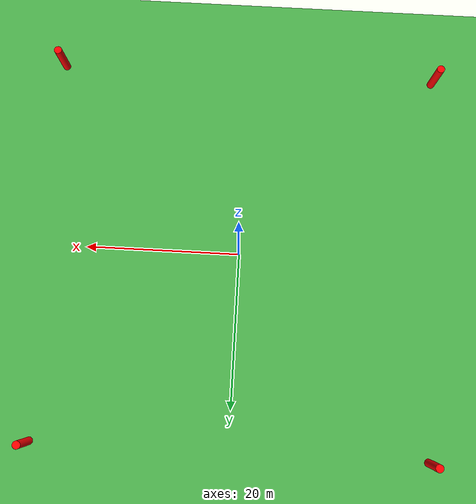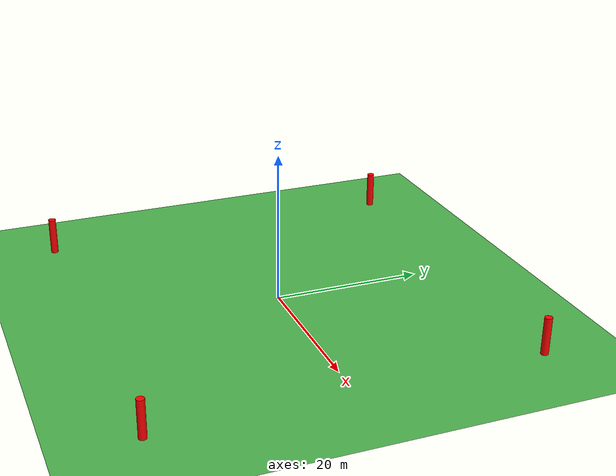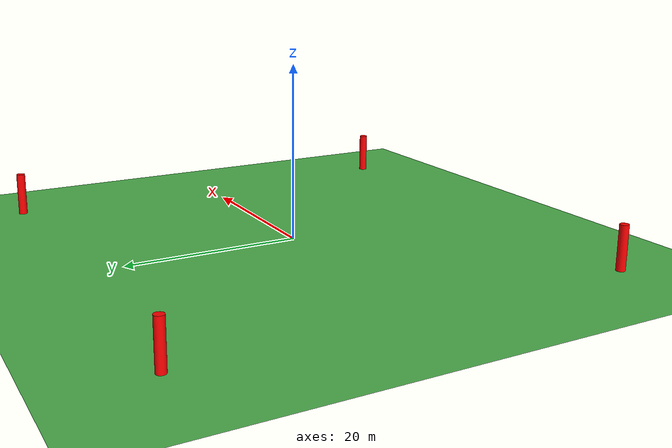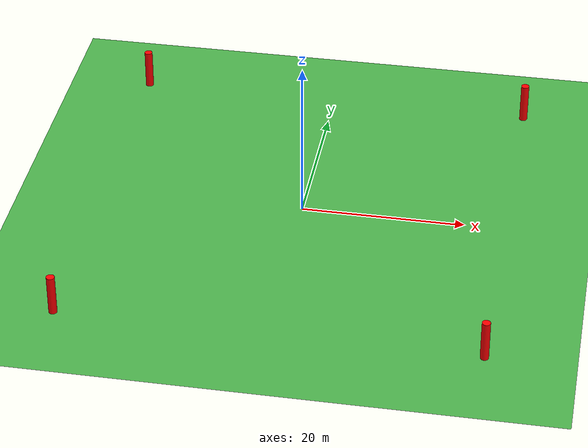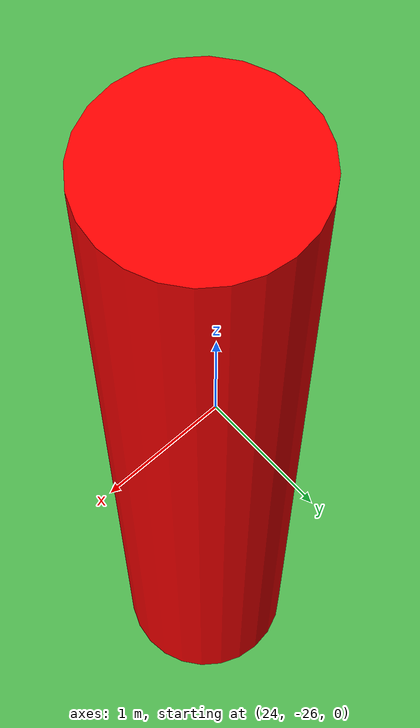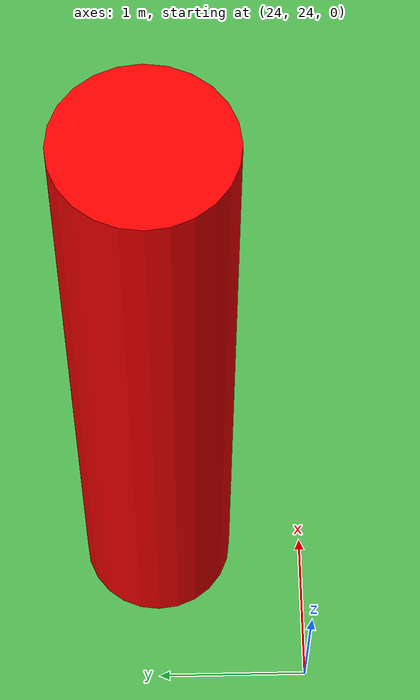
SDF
<?xml version="1.0" ?>
<sdf version="1.9">
  <world name="swarm_arena">

    <!-- Physics -->
    <physics name="1ms" type="ignored">
      <max_step_size>0.001</max_step_size>
      <real_time_factor>1.0</real_time_factor>
    </physics>

    <!-- Plugins -->
    <plugin name="gz::sim::systems::Physics" filename="gz-sim-physics-system"/>
    <plugin name="gz::sim::systems::UserCommands" filename="gz-sim-user-commands-system"/>
    <plugin name="gz::sim::systems::SceneBroadcaster" filename="gz-sim-scene-broadcaster-system"/>
    <plugin name="gz::sim::systems::Contact" filename="gz-sim-contact-system"/>
    <plugin name="gz::sim::systems::Imu" filename="gz-sim-imu-system"/>
    <plugin name="gz::sim::systems::Magnetometer" filename="gz-sim-magnetometer-system"/>
    <plugin name="gz::sim::systems::AirPressure" filename="gz-sim-air-pressure-system"/>
    <plugin name="gz::sim::systems::NavSat" filename="gz-sim-navsat-system"/>

    <!-- Lighting -->
    <light name="sun" type="directional">
      <cast_shadows>true</cast_shadows>
      <pose>0 0 10 0 0 0</pose>
      <diffuse>0.8 0.8 0.8 1</diffuse>
      <specular>0.2 0.2 0.2 1</specular>
      <attenuation>
        <range>1000</range>
      </attenuation>
      <direction>-0.5 0.1 -0.9</direction>
    </light>

    <!-- Ground plane -->
    <model name="ground_plane">
      <static>true</static>
      <link name="link">
        <collision name="collision">
          <geometry>
            <plane>
              <normal>0 0 1</normal>
              <size>100 100</size>
            </plane>
          </geometry>
          <surface>
            <contact>
              <collide_bitmask>0xffff</collide_bitmask>
            </contact>
            <friction>
              <ode>
                <mu>100</mu>
                <mu2>50</mu2>
              </ode>
            </friction>
          </surface>
        </collision>

        <visual name="visual">
          <geometry>
            <plane>
              <normal>0 0 1</normal>
              <size>100 100</size>
            </plane>
          </geometry>
          <material>
            <ambient>0.3 0.7 0.3 1</ambient>
            <diffuse>0.3 0.7 0.3 1</diffuse>
            <specular>0.01 0.01 0.01 1</specular>
          </material>
        </visual>

      </link>
    </model>

    <!-- Competition boundaries -->
    <model name="boundary_markers">
      <static>true</static>

      <!-- Corner markers -->
      <link name="marker_1">
        <pose>25 25 2.5 0 0 0</pose>
        <visual name="visual">
          <geometry>
            <cylinder>
              <radius>0.5</radius>
              <length>5</length>
            </cylinder>
          </geometry>
          <material>
            <ambient>1 0 0 1</ambient>
            <diffuse>1 0 0 1</diffuse>
          </material>
        </visual>
      </link>

      <link name="marker_2">
        <pose>25 -25 2.5 0 0 0</pose>
        <visual name="visual">
          <geometry>
            <cylinder>
              <radius>0.5</radius>
              <length>5</length>
            </cylinder>
          </geometry>
          <material>
            <ambient>1 0 0 1</ambient>
            <diffuse>1 0 0 1</diffuse>
          </material>
        </visual>
      </link>

      <link name="marker_3">
        <pose>-25 25 2.5 0 0 0</pose>
        <visual name="visual">
          <geometry>
            <cylinder>
              <radius>0.5</radius>
              <length>5</length>
            </cylinder>
          </geometry>
          <material>
            <ambient>1 0 0 1</ambient>
            <diffuse>1 0 0 1</diffuse>
          </material>
        </visual>
      </link>

      <link name="marker_4">
        <pose>-25 -25 2.5 0 0 0</pose>
        <visual name="visual">
          <geometry>
            <cylinder>
              <radius>0.5</radius>
              <length>5</length>
            </cylinder>
          </geometry>
          <material>
            <ambient>1 0 0 1</ambient>
            <diffuse>1 0 0 1</diffuse>
          </material>
        </visual>
      </link>

    </model>

  </world>
</sdf>
